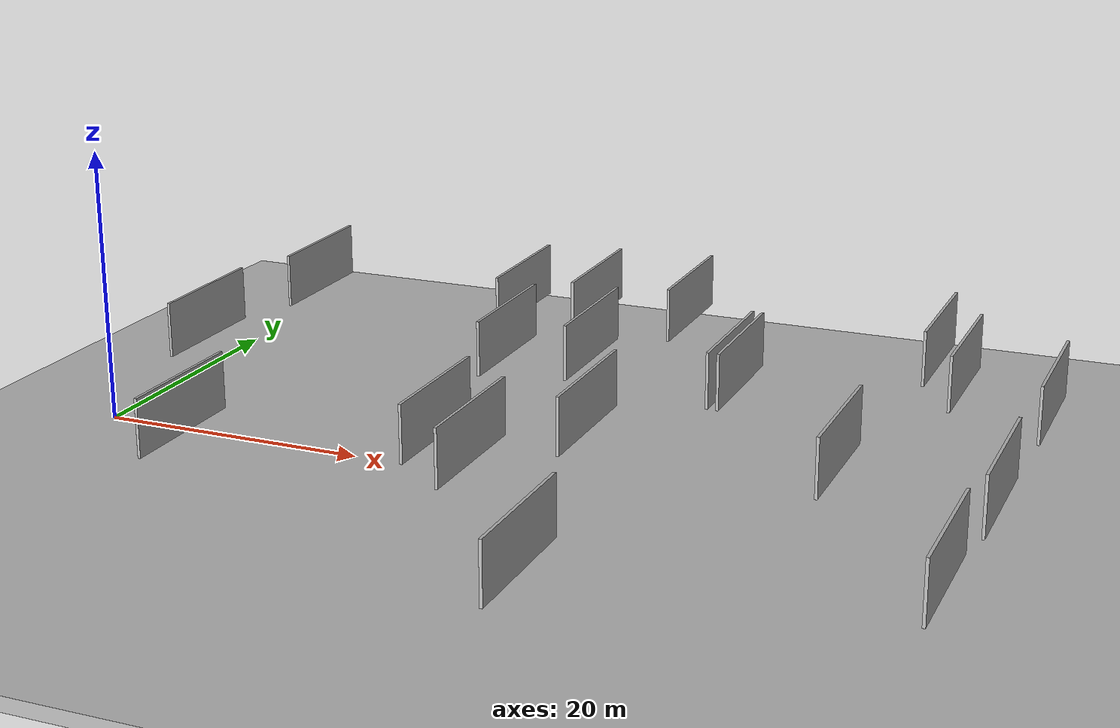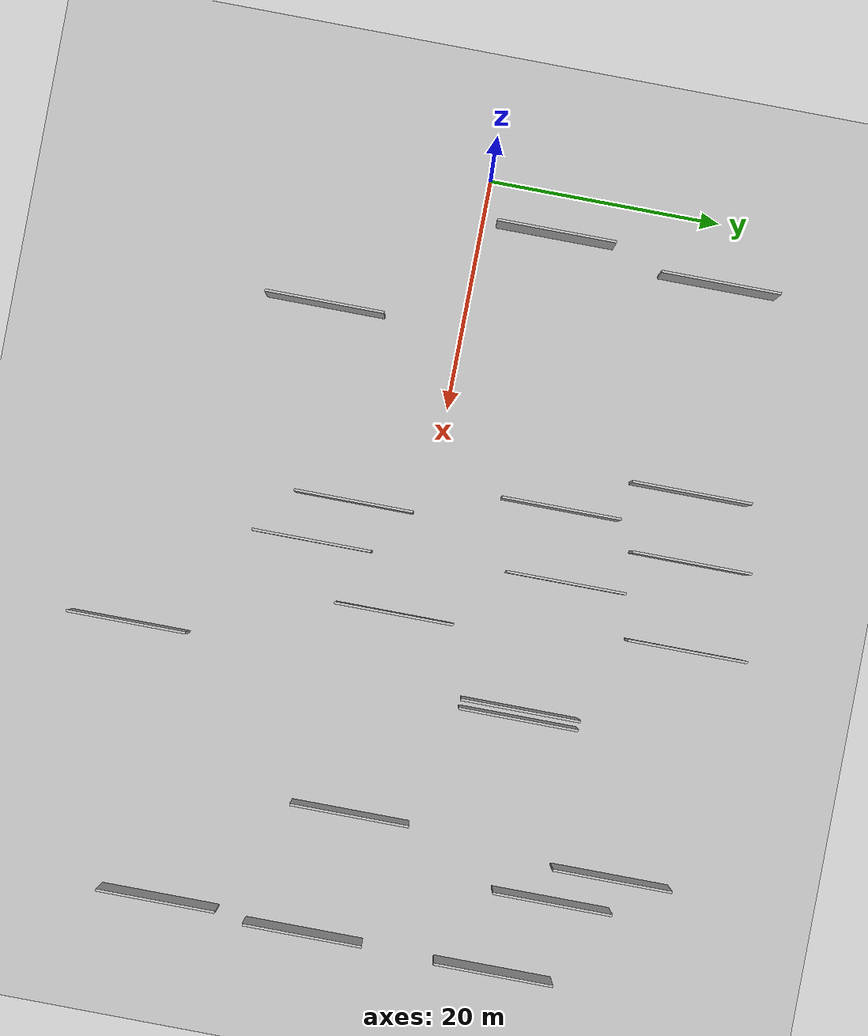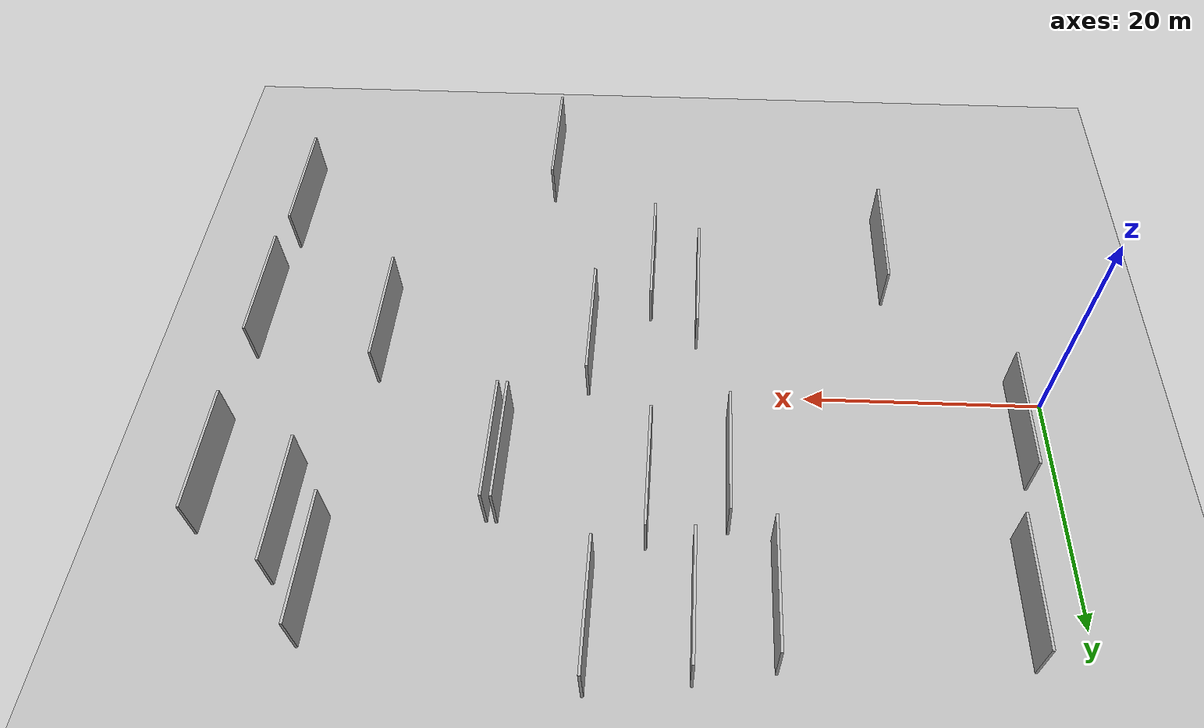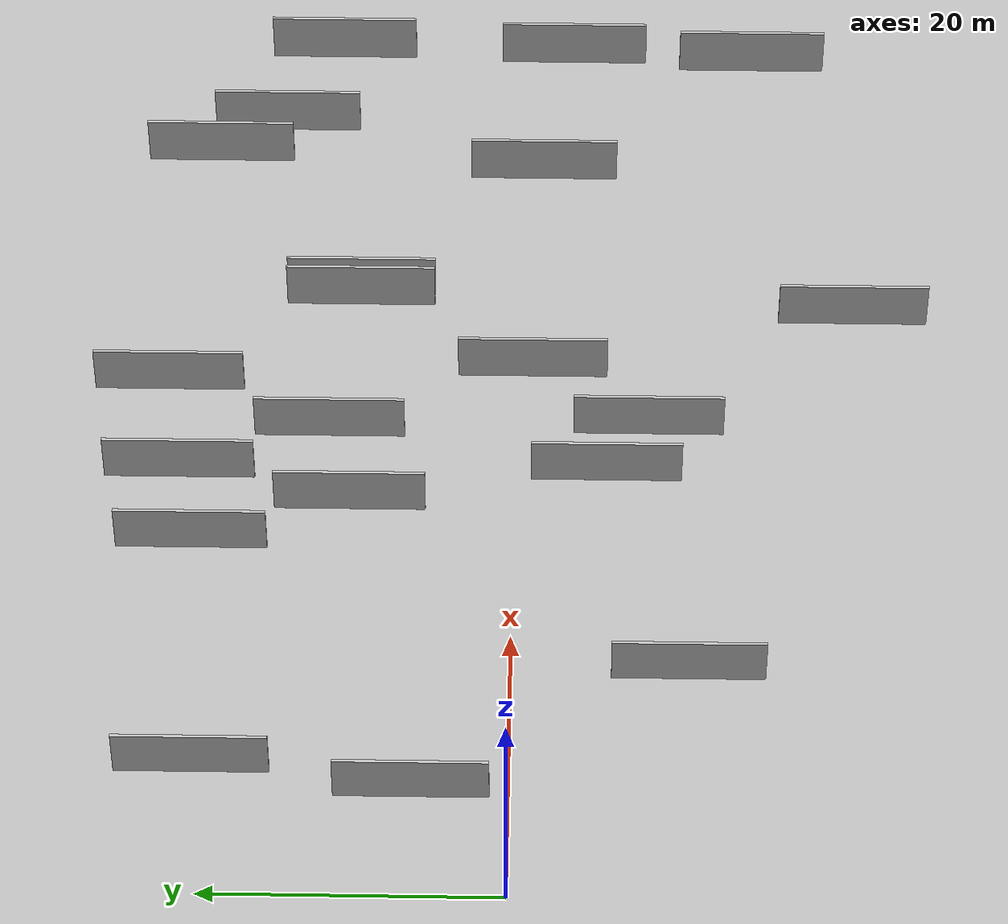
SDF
<?xml version="1.0" encoding="utf-8"?>

<sdf version="1.6">

   <world name="default">

      <gui fullscreen="0">

         <camera name="user_camera">

            <pose>-15 0 4.57585 0 0 0</pose>

            <view_controller>orbit</view_controller>

         </camera>

      </gui>

      <scene>

         <sky>

           <clouds>

             <speed>12</speed>

           </clouds>

         </sky>

         <ambient>0.4 0.4 0.4 1</ambient>

         <background>0.7 0.7 0.7 1</background>

         <shadows>1</shadows>

      </scene>

      <gravity>0 0 -9.8066</gravity>

      <magnetic_field>6e-06 2.3e-05 -4.2e-05</magnetic_field>

      <physics default="0" name="default_physics" type="ode">

         <ode>

            <solver>

               <type>quick</type>

               <iters>10</iters>

               <sor>1.0</sor>

               <use_dynamic_moi_rescaling>0</use_dynamic_moi_rescaling>

            </solver>

            <constraints>

               <cfm>0</cfm>

               <erp>0.2</erp>

               <contact_max_correcting_vel>100</contact_max_correcting_vel>

               <contact_surface_layer>0.001</contact_surface_layer>

            </constraints>

         </ode>

         <max_step_size>0.004</max_step_size>

         <real_time_factor>1</real_time_factor>

         <real_time_update_rate>250</real_time_update_rate>

      </physics>

      <light name="sun" type="directional">

         <cast_shadows>1</cast_shadows>

         <pose>0 0 10 0 0 0</pose>

         <diffuse>0.8 0.8 0.8 1</diffuse>

         <specular>0.2 0.2 0.2 1</specular>

         <attenuation>

            <range>1000</range>

            <constant>0.9</constant>

            <linear>0.01</linear>

            <quadratic>0.001</quadratic>

         </attenuation>

         <direction>-0.5 0.1 -0.9</direction>

      </light>

      <include>

         <name>ground_plane_1</name>

         <uri>model://HANNAS_ground_plane</uri>

         <pose>0 0 0  0 0 0</pose>

      </include>

      <include>

         <name>ground_plane_2</name>

         <uri>model://HANNAS_ground_plane</uri>

         <pose>100 0 0  0 0 0</pose>

      </include>

      <model name="HANNAS_wall_1">

         <static>1</static>

         <pose frame="">4.5108 6.1599 5.0 0.000000 0.000000 1.570796</pose>

         <link name="link">

            <pose frame="">0 0 2.00 0 0 0</pose>

            <collision name="collision">

               <geometry>

                  <box>

                     <size>10.00 0.2 4.00</size>

                  </box>

               </geometry>

               <max_contacts>10</max_contacts>

               <surface>

                  <contact>

                     <ode/>

                  </contact>

                  <bounce/>

                  <friction>

                     <torsional>

                        <ode/>

                     </torsional>

                     <ode/>

                  </friction>

               </surface>

            </collision>

            <visual name="visual">

               <cast_shadows>0</cast_shadows>

               <geometry>

                  <box>

                     <size>10.00 0.2 4.00</size>

                  </box>

               </geometry>

               <material>

                  <script>

                     <uri>model://HANNAS_wall/materials/scripts</uri>

                     <uri>model://HANNAS_wall/materials/textures</uri>

                     <name>vrc/HANNAS_wall</name>

                  </script>

               </material>

            </visual>

            <self_collide>0</self_collide>

            <enable_wind>0</enable_wind>

            <kinematic>0</kinematic>

         </link>

      </model>

      <model name="HANNAS_wall_2">

         <static>1</static>

         <pose frame="">65.6627 12.2968 5.0 0.000000 0.000000 1.570796</pose>

         <link name="link">

            <pose frame="">0 0 2.00 0 0 0</pose>

            <collision name="collision">

               <geometry>

                  <box>

                     <size>10.00 0.2 4.00</size>

                  </box>

               </geometry>

               <max_contacts>10</max_contacts>

               <surface>

                  <contact>

                     <ode/>

                  </contact>

                  <bounce/>

                  <friction>

                     <torsional>

                        <ode/>

                     </torsional>

                     <ode/>

                  </friction>

               </surface>

            </collision>

            <visual name="visual">

               <cast_shadows>0</cast_shadows>

               <geometry>

                  <box>

                     <size>10.00 0.2 4.00</size>

                  </box>

               </geometry>

               <material>

                  <script>

                     <uri>model://HANNAS_wall/materials/scripts</uri>

                     <uri>model://HANNAS_wall/materials/textures</uri>

                     <name>vrc/HANNAS_wall</name>

                  </script>

               </material>

            </visual>

            <self_collide>0</self_collide>

            <enable_wind>0</enable_wind>

            <kinematic>0</kinematic>

         </link>

      </model>

      <model name="HANNAS_wall_3">

         <static>1</static>

         <pose frame="">6.1972 20.2566 5.0 0.000000 0.000000 1.570796</pose>

         <link name="link">

            <pose frame="">0 0 2.00 0 0 0</pose>

            <collision name="collision">

               <geometry>

                  <box>

                     <size>10.00 0.2 4.00</size>

                  </box>

               </geometry>

               <max_contacts>10</max_contacts>

               <surface>

                  <contact>

                     <ode/>

                  </contact>

                  <bounce/>

                  <friction>

                     <torsional>

                        <ode/>

                     </torsional>

                     <ode/>

                  </friction>

               </surface>

            </collision>

            <visual name="visual">

               <cast_shadows>0</cast_shadows>

               <geometry>

                  <box>

                     <size>10.00 0.2 4.00</size>

                  </box>

               </geometry>

               <material>

                  <script>

                     <uri>model://HANNAS_wall/materials/scripts</uri>

                     <uri>model://HANNAS_wall/materials/textures</uri>

                     <name>vrc/HANNAS_wall</name>

                  </script>

               </material>

            </visual>

            <self_collide>0</self_collide>

            <enable_wind>0</enable_wind>

            <kinematic>0</kinematic>

         </link>

      </model>

      <model name="HANNAS_wall_4">

         <static>1</static>

         <pose frame="">23.6302 21.1054 5.0 0.000000 0.000000 1.570796</pose>

         <link name="link">

            <pose frame="">0 0 2.00 0 0 0</pose>

            <collision name="collision">

               <geometry>

                  <box>

                     <size>10.00 0.2 4.00</size>

                  </box>

               </geometry>

               <max_contacts>10</max_contacts>

               <surface>

                  <contact>

                     <ode/>

                  </contact>

                  <bounce/>

                  <friction>

                     <torsional>

                        <ode/>

                     </torsional>

                     <ode/>

                  </friction>

               </surface>

            </collision>

            <visual name="visual">

               <cast_shadows>0</cast_shadows>

               <geometry>

                  <box>

                     <size>10.00 0.2 4.00</size>

                  </box>

               </geometry>

               <material>

                  <script>

                     <uri>model://HANNAS_wall/materials/scripts</uri>

                     <uri>model://HANNAS_wall/materials/textures</uri>

                     <name>vrc/HANNAS_wall</name>

                  </script>

               </material>

            </visual>

            <self_collide>0</self_collide>

            <enable_wind>0</enable_wind>

            <kinematic>0</kinematic>

         </link>

      </model>

      <model name="HANNAS_wall_5">

         <static>1</static>

         <pose frame="">37.9588 -1.2039 5.0 0.000000 0.000000 1.570796</pose>

         <link name="link">

            <pose frame="">0 0 2.00 0 0 0</pose>

            <collision name="collision">

               <geometry>

                  <box>

                     <size>10.00 0.2 4.00</size>

                  </box>

               </geometry>

               <max_contacts>10</max_contacts>

               <surface>

                  <contact>

                     <ode/>

                  </contact>

                  <bounce/>

                  <friction>

                     <torsional>

                        <ode/>

                     </torsional>

                     <ode/>

                  </friction>

               </surface>

            </collision>

            <visual name="visual">

               <cast_shadows>0</cast_shadows>

               <geometry>

                  <box>

                     <size>10.00 0.2 4.00</size>

                  </box>

               </geometry>

               <material>

                  <script>

                     <uri>model://HANNAS_wall/materials/scripts</uri>

                     <uri>model://HANNAS_wall/materials/textures</uri>

                     <name>vrc/HANNAS_wall</name>

                  </script>

               </material>

            </visual>

            <self_collide>0</self_collide>

            <enable_wind>0</enable_wind>

            <kinematic>0</kinematic>

         </link>

      </model>

      <model name="HANNAS_wall_6">

         <static>1</static>

         <pose frame="">33.2714 -8.9843 5.0 0.000000 0.000000 1.570796</pose>

         <link name="link">

            <pose frame="">0 0 2.00 0 0 0</pose>

            <collision name="collision">

               <geometry>

                  <box>

                     <size>10.00 0.2 4.00</size>

                  </box>

               </geometry>

               <max_contacts>10</max_contacts>

               <surface>

                  <contact>

                     <ode/>

                  </contact>

                  <bounce/>

                  <friction>

                     <torsional>

                        <ode/>

                     </torsional>

                     <ode/>

                  </friction>

               </surface>

            </collision>

            <visual name="visual">

               <cast_shadows>0</cast_shadows>

               <geometry>

                  <box>

                     <size>10.00 0.2 4.00</size>

                  </box>

               </geometry>

               <material>

                  <script>

                     <uri>model://HANNAS_wall/materials/scripts</uri>

                     <uri>model://HANNAS_wall/materials/textures</uri>

                     <name>vrc/HANNAS_wall</name>

                  </script>

               </material>

            </visual>

            <self_collide>0</self_collide>

            <enable_wind>0</enable_wind>

            <kinematic>0</kinematic>

         </link>

      </model>

      <model name="HANNAS_wall_7">

         <static>1</static>

         <pose frame="">29.4451 -6.1803 5.0 0.000000 0.000000 1.570796</pose>

         <link name="link">

            <pose frame="">0 0 2.00 0 0 0</pose>

            <collision name="collision">

               <geometry>

                  <box>

                     <size>10.00 0.2 4.00</size>

                  </box>

               </geometry>

               <max_contacts>10</max_contacts>

               <surface>

                  <contact>

                     <ode/>

                  </contact>

                  <bounce/>

                  <friction>

                     <torsional>

                        <ode/>

                     </torsional>

                     <ode/>

                  </friction>

               </surface>

            </collision>

            <visual name="visual">

               <cast_shadows>0</cast_shadows>

               <geometry>

                  <box>

                     <size>10.00 0.2 4.00</size>

                  </box>

               </geometry>

               <material>

                  <script>

                     <uri>model://HANNAS_wall/materials/scripts</uri>

                     <uri>model://HANNAS_wall/materials/textures</uri>

                     <name>vrc/HANNAS_wall</name>

                  </script>

               </material>

            </visual>

            <self_collide>0</self_collide>

            <enable_wind>0</enable_wind>

            <kinematic>0</kinematic>

         </link>

      </model>

      <model name="HANNAS_wall_8">

         <static>1</static>

         <pose frame="">42.6785 -22.7746 5.0 0.000000 0.000000 1.570796</pose>

         <link name="link">

            <pose frame="">0 0 2.00 0 0 0</pose>

            <collision name="collision">

               <geometry>

                  <box>

                     <size>10.00 0.2 4.00</size>

                  </box>

               </geometry>

               <max_contacts>10</max_contacts>

               <surface>

                  <contact>

                     <ode/>

                  </contact>

                  <bounce/>

                  <friction>

                     <torsional>

                        <ode/>

                     </torsional>

                     <ode/>

                  </friction>

               </surface>

            </collision>

            <visual name="visual">

               <cast_shadows>0</cast_shadows>

               <geometry>

                  <box>

                     <size>10.00 0.2 4.00</size>

                  </box>

               </geometry>

               <material>

                  <script>

                     <uri>model://HANNAS_wall/materials/scripts</uri>

                     <uri>model://HANNAS_wall/materials/textures</uri>

                     <name>vrc/HANNAS_wall</name>

                  </script>

               </material>

            </visual>

            <self_collide>0</self_collide>

            <enable_wind>0</enable_wind>

            <kinematic>0</kinematic>

         </link>

      </model>

      <model name="HANNAS_wall_9">

         <static>1</static>

         <pose frame="">29.3124 22.1550 5.0 0.000000 0.000000 1.570796</pose>

         <link name="link">

            <pose frame="">0 0 2.00 0 0 0</pose>

            <collision name="collision">

               <geometry>

                  <box>

                     <size>10.00 0.2 4.00</size>

                  </box>

               </geometry>

               <max_contacts>10</max_contacts>

               <surface>

                  <contact>

                     <ode/>

                  </contact>

                  <bounce/>

                  <friction>

                     <torsional>

                        <ode/>

                     </torsional>

                     <ode/>

                  </friction>

               </surface>

            </collision>

            <visual name="visual">

               <cast_shadows>0</cast_shadows>

               <geometry>

                  <box>

                     <size>10.00 0.2 4.00</size>

                  </box>

               </geometry>

               <material>

                  <script>

                     <uri>model://HANNAS_wall/materials/scripts</uri>

                     <uri>model://HANNAS_wall/materials/textures</uri>

                     <name>vrc/HANNAS_wall</name>

                  </script>

               </material>

            </visual>

            <self_collide>0</self_collide>

            <enable_wind>0</enable_wind>

            <kinematic>0</kinematic>

         </link>

      </model>

      <model name="HANNAS_wall_10">

         <static>1</static>

         <pose frame="">36.5385 23.1392 5.0 0.000000 0.000000 1.570796</pose>

         <link name="link">

            <pose frame="">0 0 2.00 0 0 0</pose>

            <collision name="collision">

               <geometry>

                  <box>

                     <size>10.00 0.2 4.00</size>

                  </box>

               </geometry>

               <max_contacts>10</max_contacts>

               <surface>

                  <contact>

                     <ode/>

                  </contact>

                  <bounce/>

                  <friction>

                     <torsional>

                        <ode/>

                     </torsional>

                     <ode/>

                  </friction>

               </surface>

            </collision>

            <visual name="visual">

               <cast_shadows>0</cast_shadows>

               <geometry>

                  <box>

                     <size>10.00 0.2 4.00</size>

                  </box>

               </geometry>

               <material>

                  <script>

                     <uri>model://HANNAS_wall/materials/scripts</uri>

                     <uri>model://HANNAS_wall/materials/textures</uri>

                     <name>vrc/HANNAS_wall</name>

                  </script>

               </material>

            </visual>

            <self_collide>0</self_collide>

            <enable_wind>0</enable_wind>

            <kinematic>0</kinematic>

         </link>

      </model>

      <model name="HANNAS_wall_11">

         <static>1</static>

         <pose frame="">13.7471 -11.5779 5.0 0.000000 0.000000 1.570796</pose>

         <link name="link">

            <pose frame="">0 0 2.00 0 0 0</pose>

            <collision name="collision">

               <geometry>

                  <box>

                     <size>10.00 0.2 4.00</size>

                  </box>

               </geometry>

               <max_contacts>10</max_contacts>

               <surface>

                  <contact>

                     <ode/>

                  </contact>

                  <bounce/>

                  <friction>

                     <torsional>

                        <ode/>

                     </torsional>

                     <ode/>

                  </friction>

               </surface>

            </collision>

            <visual name="visual">

               <cast_shadows>0</cast_shadows>

               <geometry>

                  <box>

                     <size>10.00 0.2 4.00</size>

                  </box>

               </geometry>

               <material>

                  <script>

                     <uri>model://HANNAS_wall/materials/scripts</uri>

                     <uri>model://HANNAS_wall/materials/textures</uri>

                     <name>vrc/HANNAS_wall</name>

                  </script>

               </material>

            </visual>

            <self_collide>0</self_collide>

            <enable_wind>0</enable_wind>

            <kinematic>0</kinematic>

         </link>

      </model>

      <model name="HANNAS_wall_12">

         <static>1</static>

         <pose frame="">59.0430 16.0390 5.0 0.000000 0.000000 1.570796</pose>

         <link name="link">

            <pose frame="">0 0 2.00 0 0 0</pose>

            <collision name="collision">

               <geometry>

                  <box>

                     <size>10.00 0.2 4.00</size>

                  </box>

               </geometry>

               <max_contacts>10</max_contacts>

               <surface>

                  <contact>

                     <ode/>

                  </contact>

                  <bounce/>

                  <friction>

                     <torsional>

                        <ode/>

                     </torsional>

                     <ode/>

                  </friction>

               </surface>

            </collision>

            <visual name="visual">

               <cast_shadows>0</cast_shadows>

               <geometry>

                  <box>

                     <size>10.00 0.2 4.00</size>

                  </box>

               </geometry>

               <material>

                  <script>

                     <uri>model://HANNAS_wall/materials/scripts</uri>

                     <uri>model://HANNAS_wall/materials/textures</uri>

                     <name>vrc/HANNAS_wall</name>

                  </script>

               </material>

            </visual>

            <self_collide>0</self_collide>

            <enable_wind>0</enable_wind>

            <kinematic>0</kinematic>

         </link>

      </model>

      <model name="HANNAS_wall_13">

         <static>1</static>

         <pose frame="">64.8110 -16.1368 5.0 0.000000 0.000000 1.570796</pose>

         <link name="link">

            <pose frame="">0 0 2.00 0 0 0</pose>

            <collision name="collision">

               <geometry>

                  <box>

                     <size>10.00 0.2 4.00</size>

                  </box>

               </geometry>

               <max_contacts>10</max_contacts>

               <surface>

                  <contact>

                     <ode/>

                  </contact>

                  <bounce/>

                  <friction>

                     <torsional>

                        <ode/>

                     </torsional>

                     <ode/>

                  </friction>

               </surface>

            </collision>

            <visual name="visual">

               <cast_shadows>0</cast_shadows>

               <geometry>

                  <box>

                     <size>10.00 0.2 4.00</size>

                  </box>

               </geometry>

               <material>

                  <script>

                     <uri>model://HANNAS_wall/materials/scripts</uri>

                     <uri>model://HANNAS_wall/materials/textures</uri>

                     <name>vrc/HANNAS_wall</name>

                  </script>

               </material>

            </visual>

            <self_collide>0</self_collide>

            <enable_wind>0</enable_wind>

            <kinematic>0</kinematic>

         </link>

      </model>

      <model name="HANNAS_wall_14">

         <static>1</static>

         <pose frame="">26.8636 10.7643 5.0 0.000000 0.000000 1.570796</pose>

         <link name="link">

            <pose frame="">0 0 2.00 0 0 0</pose>

            <collision name="collision">

               <geometry>

                  <box>

                     <size>10.00 0.2 4.00</size>

                  </box>

               </geometry>

               <max_contacts>10</max_contacts>

               <surface>

                  <contact>

                     <ode/>

                  </contact>

                  <bounce/>

                  <friction>

                     <torsional>

                        <ode/>

                     </torsional>

                     <ode/>

                  </friction>

               </surface>

            </collision>

            <visual name="visual">

               <cast_shadows>0</cast_shadows>

               <geometry>

                  <box>

                     <size>10.00 0.2 4.00</size>

                  </box>

               </geometry>

               <material>

                  <script>

                     <uri>model://HANNAS_wall/materials/scripts</uri>

                     <uri>model://HANNAS_wall/materials/textures</uri>

                     <name>vrc/HANNAS_wall</name>

                  </script>

               </material>

            </visual>

            <self_collide>0</self_collide>

            <enable_wind>0</enable_wind>

            <kinematic>0</kinematic>

         </link>

      </model>

      <model name="HANNAS_wall_15">

         <static>1</static>

         <pose frame="">65.3887 -3.7700 5.0 0.000000 0.000000 1.570796</pose>

         <link name="link">

            <pose frame="">0 0 2.00 0 0 0</pose>

            <collision name="collision">

               <geometry>

                  <box>

                     <size>10.00 0.2 4.00</size>

                  </box>

               </geometry>

               <max_contacts>10</max_contacts>

               <surface>

                  <contact>

                     <ode/>

                  </contact>

                  <bounce/>

                  <friction>

                     <torsional>

                        <ode/>

                     </torsional>

                     <ode/>

                  </friction>

               </surface>

            </collision>

            <visual name="visual">

               <cast_shadows>0</cast_shadows>

               <geometry>

                  <box>

                     <size>10.00 0.2 4.00</size>

                  </box>

               </geometry>

               <material>

                  <script>

                     <uri>model://HANNAS_wall/materials/scripts</uri>

                     <uri>model://HANNAS_wall/materials/textures</uri>

                     <name>vrc/HANNAS_wall</name>

                  </script>

               </material>

            </visual>

            <self_collide>0</self_collide>

            <enable_wind>0</enable_wind>

            <kinematic>0</kinematic>

         </link>

      </model>

      <model name="HANNAS_wall_16">

         <static>1</static>

         <pose frame="">43.8613 10.5154 5.0 0.000000 0.000000 1.570796</pose>

         <link name="link">

            <pose frame="">0 0 2.00 0 0 0</pose>

            <collision name="collision">

               <geometry>

                  <box>

                     <size>10.00 0.2 4.00</size>

                  </box>

               </geometry>

               <max_contacts>10</max_contacts>

               <surface>

                  <contact>

                     <ode/>

                  </contact>

                  <bounce/>

                  <friction>

                     <torsional>

                        <ode/>

                     </torsional>

                     <ode/>

                  </friction>

               </surface>

            </collision>

            <visual name="visual">

               <cast_shadows>0</cast_shadows>

               <geometry>

                  <box>

                     <size>10.00 0.2 4.00</size>

                  </box>

               </geometry>

               <material>

                  <script>

                     <uri>model://HANNAS_wall/materials/scripts</uri>

                     <uri>model://HANNAS_wall/materials/textures</uri>

                     <name>vrc/HANNAS_wall</name>

                  </script>

               </material>

            </visual>

            <self_collide>0</self_collide>

            <enable_wind>0</enable_wind>

            <kinematic>0</kinematic>

         </link>

      </model>

      <model name="HANNAS_wall_17">

         <static>1</static>

         <pose frame="">56.2537 20.5272 5.0 0.000000 0.000000 1.570796</pose>

         <link name="link">

            <pose frame="">0 0 2.00 0 0 0</pose>

            <collision name="collision">

               <geometry>

                  <box>

                     <size>10.00 0.2 4.00</size>

                  </box>

               </geometry>

               <max_contacts>10</max_contacts>

               <surface>

                  <contact>

                     <ode/>

                  </contact>

                  <bounce/>

                  <friction>

                     <torsional>

                        <ode/>

                     </torsional>

                     <ode/>

                  </friction>

               </surface>

            </collision>

            <visual name="visual">

               <cast_shadows>0</cast_shadows>

               <geometry>

                  <box>

                     <size>10.00 0.2 4.00</size>

                  </box>

               </geometry>

               <material>

                  <script>

                     <uri>model://HANNAS_wall/materials/scripts</uri>

                     <uri>model://HANNAS_wall/materials/textures</uri>

                     <name>vrc/HANNAS_wall</name>

                  </script>

               </material>

            </visual>

            <self_collide>0</self_collide>

            <enable_wind>0</enable_wind>

            <kinematic>0</kinematic>

         </link>

      </model>

      <model name="HANNAS_wall_18">

         <static>1</static>

         <pose frame="">32.8180 12.2855 5.0 0.000000 0.000000 1.570796</pose>

         <link name="link">

            <pose frame="">0 0 2.00 0 0 0</pose>

            <collision name="collision">

               <geometry>

                  <box>

                     <size>10.00 0.2 4.00</size>

                  </box>

               </geometry>

               <max_contacts>10</max_contacts>

               <surface>

                  <contact>

                     <ode/>

                  </contact>

                  <bounce/>

                  <friction>

                     <torsional>

                        <ode/>

                     </torsional>

                     <ode/>

                  </friction>

               </surface>

            </collision>

            <visual name="visual">

               <cast_shadows>0</cast_shadows>

               <geometry>

                  <box>

                     <size>10.00 0.2 4.00</size>

                  </box>

               </geometry>

               <material>

                  <script>

                     <uri>model://HANNAS_wall/materials/scripts</uri>

                     <uri>model://HANNAS_wall/materials/textures</uri>

                     <name>vrc/HANNAS_wall</name>

                  </script>

               </material>

            </visual>

            <self_collide>0</self_collide>

            <enable_wind>0</enable_wind>

            <kinematic>0</kinematic>

         </link>

      </model>

      <model name="HANNAS_wall_19">

         <static>1</static>

         <pose frame="">54.9544 -1.7592 5.0 0.000000 0.000000 1.570796</pose>

         <link name="link">

            <pose frame="">0 0 2.00 0 0 0</pose>

            <collision name="collision">

               <geometry>

                  <box>

                     <size>10.00 0.2 4.00</size>

                  </box>

               </geometry>

               <max_contacts>10</max_contacts>

               <surface>

                  <contact>

                     <ode/>

                  </contact>

                  <bounce/>

                  <friction>

                     <torsional>

                        <ode/>

                     </torsional>

                     <ode/>

                  </friction>

               </surface>

            </collision>

            <visual name="visual">

               <cast_shadows>0</cast_shadows>

               <geometry>

                  <box>

                     <size>10.00 0.2 4.00</size>

                  </box>

               </geometry>

               <material>

                  <script>

                     <uri>model://HANNAS_wall/materials/scripts</uri>

                     <uri>model://HANNAS_wall/materials/textures</uri>

                     <name>vrc/HANNAS_wall</name>

                  </script>

               </material>

            </visual>

            <self_collide>0</self_collide>

            <enable_wind>0</enable_wind>

            <kinematic>0</kinematic>

         </link>

      </model>

      <model name="HANNAS_wall_20">

         <static>1</static>

         <pose frame="">44.6171 10.4896 5.0 0.000000 0.000000 1.570796</pose>

         <link name="link">

            <pose frame="">0 0 2.00 0 0 0</pose>

            <collision name="collision">

               <geometry>

                  <box>

                     <size>10.00 0.2 4.00</size>

                  </box>

               </geometry>

               <max_contacts>10</max_contacts>

               <surface>

                  <contact>

                     <ode/>

                  </contact>

                  <bounce/>

                  <friction>

                     <torsional>

                        <ode/>

                     </torsional>

                     <ode/>

                  </friction>

               </surface>

            </collision>

            <visual name="visual">

               <cast_shadows>0</cast_shadows>

               <geometry>

                  <box>

                     <size>10.00 0.2 4.00</size>

                  </box>

               </geometry>

               <material>

                  <script>

                     <uri>model://HANNAS_wall/materials/scripts</uri>

                     <uri>model://HANNAS_wall/materials/textures</uri>

                     <name>vrc/HANNAS_wall</name>

                  </script>

               </material>

            </visual>

            <self_collide>0</self_collide>

            <enable_wind>0</enable_wind>

            <kinematic>0</kinematic>

         </link>

      </model>

   </world>

</sdf>

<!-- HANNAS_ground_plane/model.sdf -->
<sdf version="1.4">
<model name="HANNAS_ground_plane">
  <static>true</static>
    <link name="link">
      <collision name="collision">
        <geometry>
          <plane>
            <normal>0 0 1</normal>
            <size>1000 1000</size>
          </plane>
        </geometry>
        <surface>
          <friction>
            <ode>
              <mu>100</mu>
              <mu2>50</mu2>
            </ode>
          </friction>
        </surface>
      </collision>
      <visual name="visual">
        <cast_shadows>false</cast_shadows>
        <geometry>
          <plane>
            <normal>0 0 1</normal>
            <size>1000 1000</size>
          </plane>
        </geometry>
        <material>
          <script>
            <uri>model://HANNAS_ground_plane/materials/scripts/HANNAS_ground_plane.material</uri>
	    <uri>model://HANNAS_ground_plane/materials/textures</uri>
            <name>HANNASGroundPlane/Image</name>
          </script>
        </material>
      </visual>
    </link>
  </model>
</sdf>
